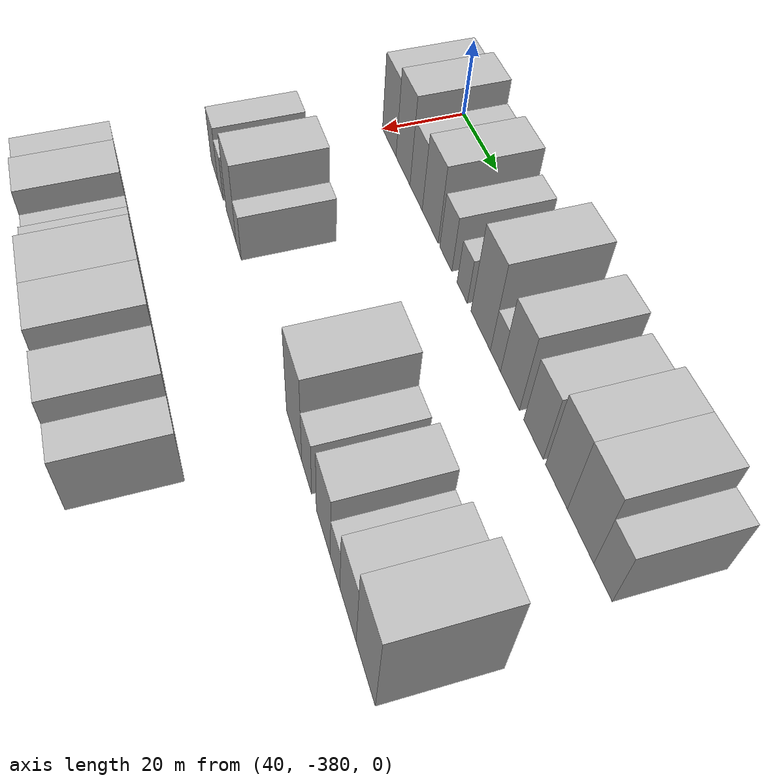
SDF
<sdf version="1.6">
 <world name="default">
  <model name="building_1">
   <static>1</static>
   <pose>50.0000 -375.0617 0 0.000000 0.000000 0.000000</pose>
   <link name="link">
    <pose>0 0 10.50 0 0 0</pose>
    <collision name="collision"><geometry><box><size>20.0000 9.8766 21.0000</size></box></geometry></collision>
    <visual name="visual">
     <cast_shadows>0</cast_shadows>
     <geometry><box><size>20.0000 9.8766 21.0000</size></box></geometry>
     <material>
      <script>
       <uri>model://HANNAS_wall/materials/scripts</uri>
       <uri>model://HANNAS_wall/materials/textures</uri>
       <name>vrc/HANNAS_wall</name>
      </script>
     </material>
    </visual>
   </link>
  </model>
  <model name="building_2">
   <static>1</static>
   <pose>50.0000 -365.2726 0 0.000000 0.000000 0.000000</pose>
   <link name="link">
    <pose>0 0 12.00 0 0 0</pose>
    <collision name="collision"><geometry><box><size>20.0000 9.7016 24.0000</size></box></geometry></collision>
    <visual name="visual">
     <cast_shadows>0</cast_shadows>
     <geometry><box><size>20.0000 9.7016 24.0000</size></box></geometry>
     <material>
      <script>
       <uri>model://HANNAS_wall/materials/scripts</uri>
       <uri>model://HANNAS_wall/materials/textures</uri>
       <name>vrc/HANNAS_wall</name>
      </script>
     </material>
    </visual>
   </link>
  </model>
  <model name="building_3">
   <static>1</static>
   <pose>50.0000 -356.4059 0 0.000000 0.000000 0.000000</pose>
   <link name="link">
    <pose>0 0 9.00 0 0 0</pose>
    <collision name="collision"><geometry><box><size>20.0000 8.0318 18.0000</size></box></geometry></collision>
    <visual name="visual">
     <cast_shadows>0</cast_shadows>
     <geometry><box><size>20.0000 8.0318 18.0000</size></box></geometry>
     <material>
      <script>
       <uri>model://HANNAS_wall/materials/scripts</uri>
       <uri>model://HANNAS_wall/materials/textures</uri>
       <name>vrc/HANNAS_wall</name>
      </script>
     </material>
    </visual>
   </link>
  </model>
  <model name="building_4">
   <static>1</static>
   <pose>50.0000 -347.4172 0 0.000000 0.000000 0.000000</pose>
   <link name="link">
    <pose>0 0 10.50 0 0 0</pose>
    <collision name="collision"><geometry><box><size>20.0000 9.9455 21.0000</size></box></geometry></collision>
    <visual name="visual">
     <cast_shadows>0</cast_shadows>
     <geometry><box><size>20.0000 9.9455 21.0000</size></box></geometry>
     <material>
      <script>
       <uri>model://HANNAS_wall/materials/scripts</uri>
       <uri>model://HANNAS_wall/materials/textures</uri>
       <name>vrc/HANNAS_wall</name>
      </script>
     </material>
    </visual>
   </link>
  </model>
  <model name="building_5">
   <static>1</static>
   <pose>50.0000 -337.9303 0 0.000000 0.000000 0.000000</pose>
   <link name="link">
    <pose>0 0 7.50 0 0 0</pose>
    <collision name="collision"><geometry><box><size>20.0000 7.0283 15.0000</size></box></geometry></collision>
    <visual name="visual">
     <cast_shadows>0</cast_shadows>
     <geometry><box><size>20.0000 7.0283 15.0000</size></box></geometry>
     <material>
      <script>
       <uri>model://HANNAS_wall/materials/scripts</uri>
       <uri>model://HANNAS_wall/materials/textures</uri>
       <name>vrc/HANNAS_wall</name>
      </script>
     </material>
    </visual>
   </link>
  </model>
  <model name="building_6">
   <static>1</static>
   <pose>50.0000 -328.5971 0 0.000000 0.000000 0.000000</pose>
   <link name="link">
    <pose>0 0 6.00 0 0 0</pose>
    <collision name="collision"><geometry><box><size>20.0000 5.6383 12.0000</size></box></geometry></collision>
    <visual name="visual">
     <cast_shadows>0</cast_shadows>
     <geometry><box><size>20.0000 5.6383 12.0000</size></box></geometry>
     <material>
      <script>
       <uri>model://HANNAS_wall/materials/scripts</uri>
       <uri>model://HANNAS_wall/materials/textures</uri>
       <name>vrc/HANNAS_wall</name>
      </script>
     </material>
    </visual>
   </link>
  </model>
  <model name="building_7">
   <static>1</static>
   <pose>50.0000 -318.7597 0 0.000000 0.000000 0.000000</pose>
   <link name="link">
    <pose>0 0 12.00 0 0 0</pose>
    <collision name="collision"><geometry><box><size>20.0000 10.0365 24.0000</size></box></geometry></collision>
    <visual name="visual">
     <cast_shadows>0</cast_shadows>
     <geometry><box><size>20.0000 10.0365 24.0000</size></box></geometry>
     <material>
      <script>
       <uri>model://HANNAS_wall/materials/scripts</uri>
       <uri>model://HANNAS_wall/materials/textures</uri>
       <name>vrc/HANNAS_wall</name>
      </script>
     </material>
    </visual>
   </link>
  </model>
  <model name="building_8">
   <static>1</static>
   <pose>50.0000 -311.2489 0 0.000000 0.000000 0.000000</pose>
   <link name="link">
    <pose>0 0 6.00 0 0 0</pose>
    <collision name="collision"><geometry><box><size>20.0000 4.9851 12.0000</size></box></geometry></collision>
    <visual name="visual">
     <cast_shadows>0</cast_shadows>
     <geometry><box><size>20.0000 4.9851 12.0000</size></box></geometry>
     <material>
      <script>
       <uri>model://HANNAS_wall/materials/scripts</uri>
       <uri>model://HANNAS_wall/materials/textures</uri>
       <name>vrc/HANNAS_wall</name>
      </script>
     </material>
    </visual>
   </link>
  </model>
  <model name="building_9">
   <static>1</static>
   <pose>50.0000 -304.3338 0 0.000000 0.000000 0.000000</pose>
   <link name="link">
    <pose>0 0 10.50 0 0 0</pose>
    <collision name="collision"><geometry><box><size>20.0000 8.8450 21.0000</size></box></geometry></collision>
    <visual name="visual">
     <cast_shadows>0</cast_shadows>
     <geometry><box><size>20.0000 8.8450 21.0000</size></box></geometry>
     <material>
      <script>
       <uri>model://HANNAS_wall/materials/scripts</uri>
       <uri>model://HANNAS_wall/materials/textures</uri>
       <name>vrc/HANNAS_wall</name>
      </script>
     </material>
    </visual>
   </link>
  </model>
  <model name="building_10">
   <static>1</static>
   <pose>50.0000 -293.7215 0 0.000000 0.000000 0.000000</pose>
   <link name="link">
    <pose>0 0 9.00 0 0 0</pose>
    <collision name="collision"><geometry><box><size>20.0000 8.3798 18.0000</size></box></geometry></collision>
    <visual name="visual">
     <cast_shadows>0</cast_shadows>
     <geometry><box><size>20.0000 8.3798 18.0000</size></box></geometry>
     <material>
      <script>
       <uri>model://HANNAS_wall/materials/scripts</uri>
       <uri>model://HANNAS_wall/materials/textures</uri>
       <name>vrc/HANNAS_wall</name>
      </script>
     </material>
    </visual>
   </link>
  </model>
  <model name="building_11">
   <static>1</static>
   <pose>50.0000 -284.1320 0 0.000000 0.000000 0.000000</pose>
   <link name="link">
    <pose>0 0 10.50 0 0 0</pose>
    <collision name="collision"><geometry><box><size>20.0000 8.7991 21.0000</size></box></geometry></collision>
    <visual name="visual">
     <cast_shadows>0</cast_shadows>
     <geometry><box><size>20.0000 8.7991 21.0000</size></box></geometry>
     <material>
      <script>
       <uri>model://HANNAS_wall/materials/scripts</uri>
       <uri>model://HANNAS_wall/materials/textures</uri>
       <name>vrc/HANNAS_wall</name>
      </script>
     </material>
    </visual>
   </link>
  </model>
  <model name="building_12">
   <static>1</static>
   <pose>50.0000 -274.7714 0 0.000000 0.000000 0.000000</pose>
   <link name="link">
    <pose>0 0 10.50 0 0 0</pose>
    <collision name="collision"><geometry><box><size>20.0000 9.9222 21.0000</size></box></geometry></collision>
    <visual name="visual">
     <cast_shadows>0</cast_shadows>
     <geometry><box><size>20.0000 9.9222 21.0000</size></box></geometry>
     <material>
      <script>
       <uri>model://HANNAS_wall/materials/scripts</uri>
       <uri>model://HANNAS_wall/materials/textures</uri>
       <name>vrc/HANNAS_wall</name>
      </script>
     </material>
    </visual>
   </link>
  </model>
  <model name="building_13">
   <static>1</static>
   <pose>50.0000 -266.5715 0 0.000000 0.000000 0.000000</pose>
   <link name="link">
    <pose>0 0 7.50 0 0 0</pose>
    <collision name="collision"><geometry><box><size>20.0000 6.4775 15.0000</size></box></geometry></collision>
    <visual name="visual">
     <cast_shadows>0</cast_shadows>
     <geometry><box><size>20.0000 6.4775 15.0000</size></box></geometry>
     <material>
      <script>
       <uri>model://HANNAS_wall/materials/scripts</uri>
       <uri>model://HANNAS_wall/materials/textures</uri>
       <name>vrc/HANNAS_wall</name>
      </script>
     </material>
    </visual>
   </link>
  </model>
  <model name="building_87">
   <static>1</static>
   <pose>90.0000 -376.3183 0 0.000000 0.000000 0.000000</pose>
   <link name="link">
    <pose>0 0 7.50 0 0 0</pose>
    <collision name="collision"><geometry><box><size>20.0000 7.3633 15.0000</size></box></geometry></collision>
    <visual name="visual">
     <cast_shadows>0</cast_shadows>
     <geometry><box><size>20.0000 7.3633 15.0000</size></box></geometry>
     <material>
      <script>
       <uri>model://HANNAS_wall/materials/scripts</uri>
       <uri>model://HANNAS_wall/materials/textures</uri>
       <name>vrc/HANNAS_wall</name>
      </script>
     </material>
    </visual>
   </link>
  </model>
  <model name="building_88">
   <static>1</static>
   <pose>90.0000 -369.6864 0 0.000000 0.000000 0.000000</pose>
   <link name="link">
    <pose>0 0 6.00 0 0 0</pose>
    <collision name="collision"><geometry><box><size>20.0000 5.9006 12.0000</size></box></geometry></collision>
    <visual name="visual">
     <cast_shadows>0</cast_shadows>
     <geometry><box><size>20.0000 5.9006 12.0000</size></box></geometry>
     <material>
      <script>
       <uri>model://HANNAS_wall/materials/scripts</uri>
       <uri>model://HANNAS_wall/materials/textures</uri>
       <name>vrc/HANNAS_wall</name>
      </script>
     </material>
    </visual>
   </link>
  </model>
  <model name="building_89">
   <static>1</static>
   <pose>90.0000 -358.7619 0 0.000000 0.000000 0.000000</pose>
   <link name="link">
    <pose>0 0 10.50 0 0 0</pose>
    <collision name="collision"><geometry><box><size>20.0000 9.9483 21.0000</size></box></geometry></collision>
    <visual name="visual">
     <cast_shadows>0</cast_shadows>
     <geometry><box><size>20.0000 9.9483 21.0000</size></box></geometry>
     <material>
      <script>
       <uri>model://HANNAS_wall/materials/scripts</uri>
       <uri>model://HANNAS_wall/materials/textures</uri>
       <name>vrc/HANNAS_wall</name>
      </script>
     </material>
    </visual>
   </link>
  </model>
  <model name="building_90">
   <static>1</static>
   <pose>90.0000 -351.2698 0 0.000000 0.000000 0.000000</pose>
   <link name="link">
    <pose>0 0 6.00 0 0 0</pose>
    <collision name="collision"><geometry><box><size>20.0000 5.0361 12.0000</size></box></geometry></collision>
    <visual name="visual">
     <cast_shadows>0</cast_shadows>
     <geometry><box><size>20.0000 5.0361 12.0000</size></box></geometry>
     <material>
      <script>
       <uri>model://HANNAS_wall/materials/scripts</uri>
       <uri>model://HANNAS_wall/materials/textures</uri>
       <name>vrc/HANNAS_wall</name>
      </script>
     </material>
    </visual>
   </link>
  </model>
  <model name="building_91">
   <static>1</static>
   <pose>90.0000 -305.6567 0 0.000000 0.000000 0.000000</pose>
   <link name="link">
    <pose>0 0 12.00 0 0 0</pose>
    <collision name="collision"><geometry><box><size>20.0000 10.7300 24.0000</size></box></geometry></collision>
    <visual name="visual">
     <cast_shadows>0</cast_shadows>
     <geometry><box><size>20.0000 10.7300 24.0000</size></box></geometry>
     <material>
      <script>
       <uri>model://HANNAS_wall/materials/scripts</uri>
       <uri>model://HANNAS_wall/materials/textures</uri>
       <name>vrc/HANNAS_wall</name>
      </script>
     </material>
    </visual>
   </link>
  </model>
  <model name="building_92">
   <static>1</static>
   <pose>90.0000 -297.0650 0 0.000000 0.000000 0.000000</pose>
   <link name="link">
    <pose>0 0 7.50 0 0 0</pose>
    <collision name="collision"><geometry><box><size>20.0000 6.4535 15.0000</size></box></geometry></collision>
    <visual name="visual">
     <cast_shadows>0</cast_shadows>
     <geometry><box><size>20.0000 6.4535 15.0000</size></box></geometry>
     <material>
      <script>
       <uri>model://HANNAS_wall/materials/scripts</uri>
       <uri>model://HANNAS_wall/materials/textures</uri>
       <name>vrc/HANNAS_wall</name>
      </script>
     </material>
    </visual>
   </link>
  </model>
  <model name="building_93">
   <static>1</static>
   <pose>90.0000 -286.5413 0 0.000000 0.000000 0.000000</pose>
   <link name="link">
    <pose>0 0 9.00 0 0 0</pose>
    <collision name="collision"><geometry><box><size>20.0000 8.5939 18.0000</size></box></geometry></collision>
    <visual name="visual">
     <cast_shadows>0</cast_shadows>
     <geometry><box><size>20.0000 8.5939 18.0000</size></box></geometry>
     <material>
      <script>
       <uri>model://HANNAS_wall/materials/scripts</uri>
       <uri>model://HANNAS_wall/materials/textures</uri>
       <name>vrc/HANNAS_wall</name>
      </script>
     </material>
    </visual>
   </link>
  </model>
  <model name="building_94">
   <static>1</static>
   <pose>90.0000 -279.5158 0 0.000000 0.000000 0.000000</pose>
   <link name="link">
    <pose>0 0 6.00 0 0 0</pose>
    <collision name="collision"><geometry><box><size>20.0000 5.4570 12.0000</size></box></geometry></collision>
    <visual name="visual">
     <cast_shadows>0</cast_shadows>
     <geometry><box><size>20.0000 5.4570 12.0000</size></box></geometry>
     <material>
      <script>
       <uri>model://HANNAS_wall/materials/scripts</uri>
       <uri>model://HANNAS_wall/materials/textures</uri>
       <name>vrc/HANNAS_wall</name>
      </script>
     </material>
    </visual>
   </link>
  </model>
  <model name="building_95">
   <static>1</static>
   <pose>90.0000 -272.3932 0 0.000000 0.000000 0.000000</pose>
   <link name="link">
    <pose>0 0 9.00 0 0 0</pose>
    <collision name="collision"><geometry><box><size>20.0000 8.7882 18.0000</size></box></geometry></collision>
    <visual name="visual">
     <cast_shadows>0</cast_shadows>
     <geometry><box><size>20.0000 8.7882 18.0000</size></box></geometry>
     <material>
      <script>
       <uri>model://HANNAS_wall/materials/scripts</uri>
       <uri>model://HANNAS_wall/materials/textures</uri>
       <name>vrc/HANNAS_wall</name>
      </script>
     </material>
    </visual>
   </link>
  </model>
  <model name="building_96">
   <static>1</static>
   <pose>90.0000 -263.1696 0 0.000000 0.000000 0.000000</pose>
   <link name="link">
    <pose>0 0 12.00 0 0 0</pose>
    <collision name="collision"><geometry><box><size>20.0000 9.6590 24.0000</size></box></geometry></collision>
    <visual name="visual">
     <cast_shadows>0</cast_shadows>
     <geometry><box><size>20.0000 9.6590 24.0000</size></box></geometry>
     <material>
      <script>
       <uri>model://HANNAS_wall/materials/scripts</uri>
       <uri>model://HANNAS_wall/materials/textures</uri>
       <name>vrc/HANNAS_wall</name>
      </script>
     </material>
    </visual>
   </link>
  </model>
  <model name="building_167">
   <static>1</static>
   <pose>130.0000 -373.2179 0 0.000000 0.000000 0.000000</pose>
   <link name="link">
    <pose>0 0 9.00 0 0 0</pose>
    <collision name="collision"><geometry><box><size>20.0000 7.5641 18.0000</size></box></geometry></collision>
    <visual name="visual">
     <cast_shadows>0</cast_shadows>
     <geometry><box><size>20.0000 7.5641 18.0000</size></box></geometry>
     <material>
      <script>
       <uri>model://HANNAS_wall/materials/scripts</uri>
       <uri>model://HANNAS_wall/materials/textures</uri>
       <name>vrc/HANNAS_wall</name>
      </script>
     </material>
    </visual>
   </link>
  </model>
  <model name="building_168">
   <static>1</static>
   <pose>130.0000 -362.5831 0 0.000000 0.000000 0.000000</pose>
   <link name="link">
    <pose>0 0 10.50 0 0 0</pose>
    <collision name="collision"><geometry><box><size>20.0000 9.7055 21.0000</size></box></geometry></collision>
    <visual name="visual">
     <cast_shadows>0</cast_shadows>
     <geometry><box><size>20.0000 9.7055 21.0000</size></box></geometry>
     <material>
      <script>
       <uri>model://HANNAS_wall/materials/scripts</uri>
       <uri>model://HANNAS_wall/materials/textures</uri>
       <name>vrc/HANNAS_wall</name>
      </script>
     </material>
    </visual>
   </link>
  </model>
  <model name="building_169">
   <static>1</static>
   <pose>130.0000 -354.5400 0 0.000000 0.000000 0.000000</pose>
   <link name="link">
    <pose>0 0 7.50 0 0 0</pose>
    <collision name="collision"><geometry><box><size>20.0000 6.3807 15.0000</size></box></geometry></collision>
    <visual name="visual">
     <cast_shadows>0</cast_shadows>
     <geometry><box><size>20.0000 6.3807 15.0000</size></box></geometry>
     <material>
      <script>
       <uri>model://HANNAS_wall/materials/scripts</uri>
       <uri>model://HANNAS_wall/materials/textures</uri>
       <name>vrc/HANNAS_wall</name>
      </script>
     </material>
    </visual>
   </link>
  </model>
  <model name="building_170">
   <static>1</static>
   <pose>130.0000 -347.7199 0 0.000000 0.000000 0.000000</pose>
   <link name="link">
    <pose>0 0 9.00 0 0 0</pose>
    <collision name="collision"><geometry><box><size>20.0000 7.2595 18.0000</size></box></geometry></collision>
    <visual name="visual">
     <cast_shadows>0</cast_shadows>
     <geometry><box><size>20.0000 7.2595 18.0000</size></box></geometry>
     <material>
      <script>
       <uri>model://HANNAS_wall/materials/scripts</uri>
       <uri>model://HANNAS_wall/materials/textures</uri>
       <name>vrc/HANNAS_wall</name>
      </script>
     </material>
    </visual>
   </link>
  </model>
  <model name="building_171">
   <static>1</static>
   <pose>130.0000 -337.4880 0 0.000000 0.000000 0.000000</pose>
   <link name="link">
    <pose>0 0 12.00 0 0 0</pose>
    <collision name="collision"><geometry><box><size>20.0000 11.2043 24.0000</size></box></geometry></collision>
    <visual name="visual">
     <cast_shadows>0</cast_shadows>
     <geometry><box><size>20.0000 11.2043 24.0000</size></box></geometry>
     <material>
      <script>
       <uri>model://HANNAS_wall/materials/scripts</uri>
       <uri>model://HANNAS_wall/materials/textures</uri>
       <name>vrc/HANNAS_wall</name>
      </script>
     </material>
    </visual>
   </link>
  </model>
  <model name="building_172">
   <static>1</static>
   <pose>130.0000 -326.7378 0 0.000000 0.000000 0.000000</pose>
   <link name="link">
    <pose>0 0 12.00 0 0 0</pose>
    <collision name="collision"><geometry><box><size>20.0000 10.2961 24.0000</size></box></geometry></collision>
    <visual name="visual">
     <cast_shadows>0</cast_shadows>
     <geometry><box><size>20.0000 10.2961 24.0000</size></box></geometry>
     <material>
      <script>
       <uri>model://HANNAS_wall/materials/scripts</uri>
       <uri>model://HANNAS_wall/materials/textures</uri>
       <name>vrc/HANNAS_wall</name>
      </script>
     </material>
    </visual>
   </link>
  </model>
  <model name="building_173">
   <static>1</static>
   <pose>130.0000 -314.4885 0 0.000000 0.000000 0.000000</pose>
   <link name="link">
    <pose>0 0 10.50 0 0 0</pose>
    <collision name="collision"><geometry><box><size>20.0000 10.2024 21.0000</size></box></geometry></collision>
    <visual name="visual">
     <cast_shadows>0</cast_shadows>
     <geometry><box><size>20.0000 10.2024 21.0000</size></box></geometry>
     <material>
      <script>
       <uri>model://HANNAS_wall/materials/scripts</uri>
       <uri>model://HANNAS_wall/materials/textures</uri>
       <name>vrc/HANNAS_wall</name>
      </script>
     </material>
    </visual>
   </link>
  </model>
  <model name="building_174">
   <static>1</static>
   <pose>130.0000 -305.6575 0 0.000000 0.000000 0.000000</pose>
   <link name="link">
    <pose>0 0 7.50 0 0 0</pose>
    <collision name="collision"><geometry><box><size>20.0000 7.4597 15.0000</size></box></geometry></collision>
    <visual name="visual">
     <cast_shadows>0</cast_shadows>
     <geometry><box><size>20.0000 7.4597 15.0000</size></box></geometry>
     <material>
      <script>
       <uri>model://HANNAS_wall/materials/scripts</uri>
       <uri>model://HANNAS_wall/materials/textures</uri>
       <name>vrc/HANNAS_wall</name>
      </script>
     </material>
    </visual>
   </link>
  </model>
 </world>
</sdf>
